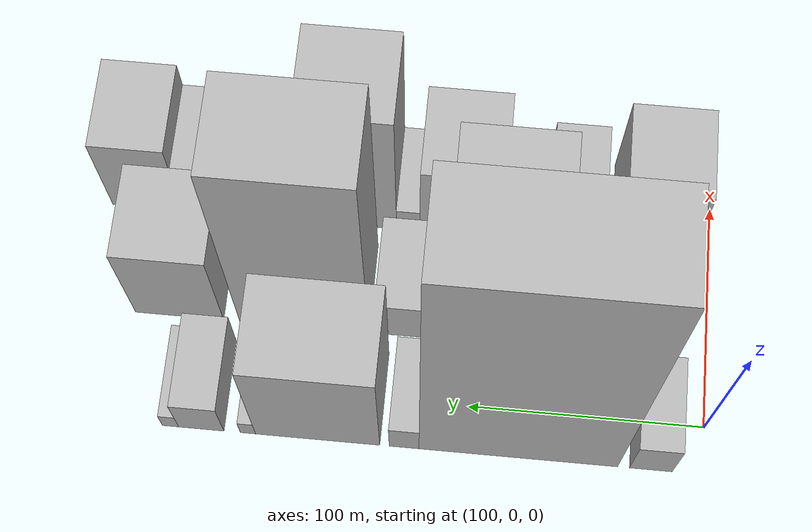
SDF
<sdf version="1.6">
 <world name="default">
  <model name="building_16">
   <static>1</static>
   <pose>100.0000 21.5906 0 0.000000 0.000000 0.000000</pose>
   <link name="link">
    <pose>0 0 16.50 0 0 0</pose>
    <collision name="collision"><geometry><box><size>40.0000 17.9257 33.0000</size></box></geometry></collision>
    <visual name="visual">
     <cast_shadows>0</cast_shadows>
     <geometry><box><size>40.0000 17.9257 33.0000</size></box></geometry>
     <material>
      <script>
       <uri>model://HANNAS_wall/materials/scripts</uri>
       <uri>model://HANNAS_wall/materials/textures</uri>
       <name>vrc/HANNAS_wall</name>
      </script>
     </material>
    </visual>
   </link>
  </model>
  <model name="building_17">
   <static>1</static>
   <pose>100.0000 77.3882 0 0.000000 0.000000 0.000000</pose>
   <link name="link">
    <pose>0 0 105.00 0 0 0</pose>
    <collision name="collision"><geometry><box><size>40.0000 83.6695 210.0000</size></box></geometry></collision>
    <visual name="visual">
     <cast_shadows>0</cast_shadows>
     <geometry><box><size>40.0000 83.6695 210.0000</size></box></geometry>
     <material>
      <script>
       <uri>model://HANNAS_wall/materials/scripts</uri>
       <uri>model://HANNAS_wall/materials/textures</uri>
       <name>vrc/HANNAS_wall</name>
      </script>
     </material>
    </visual>
   </link>
  </model>
  <model name="building_18">
   <static>1</static>
   <pose>100.0000 125.5073 0 0.000000 0.000000 0.000000</pose>
   <link name="link">
    <pose>0 0 13.50 0 0 0</pose>
    <collision name="collision"><geometry><box><size>40.0000 12.5687 27.0000</size></box></geometry></collision>
    <visual name="visual">
     <cast_shadows>0</cast_shadows>
     <geometry><box><size>40.0000 12.5687 27.0000</size></box></geometry>
     <material>
      <script>
       <uri>model://HANNAS_wall/materials/scripts</uri>
       <uri>model://HANNAS_wall/materials/textures</uri>
       <name>vrc/HANNAS_wall</name>
      </script>
     </material>
    </visual>
   </link>
  </model>
  <model name="building_19">
   <static>1</static>
   <pose>100.0000 162.1623 0 0.000000 0.000000 0.000000</pose>
   <link name="link">
    <pose>0 0 45.00 0 0 0</pose>
    <collision name="collision"><geometry><box><size>40.0000 52.7413 90.0000</size></box></geometry></collision>
    <visual name="visual">
     <cast_shadows>0</cast_shadows>
     <geometry><box><size>40.0000 52.7413 90.0000</size></box></geometry>
     <material>
      <script>
       <uri>model://HANNAS_wall/materials/scripts</uri>
       <uri>model://HANNAS_wall/materials/textures</uri>
       <name>vrc/HANNAS_wall</name>
      </script>
     </material>
    </visual>
   </link>
  </model>
  <model name="building_20">
   <static>1</static>
   <pose>100.0000 191.7754 0 0.000000 0.000000 0.000000</pose>
   <link name="link">
    <pose>0 0 7.50 0 0 0</pose>
    <collision name="collision"><geometry><box><size>40.0000 6.4849 15.0000</size></box></geometry></collision>
    <visual name="visual">
     <cast_shadows>0</cast_shadows>
     <geometry><box><size>40.0000 6.4849 15.0000</size></box></geometry>
     <material>
      <script>
       <uri>model://HANNAS_wall/materials/scripts</uri>
       <uri>model://HANNAS_wall/materials/textures</uri>
       <name>vrc/HANNAS_wall</name>
      </script>
     </material>
    </visual>
   </link>
  </model>
  <model name="building_21">
   <static>1</static>
   <pose>100.0000 211.6405 0 0.000000 0.000000 0.000000</pose>
   <link name="link">
    <pose>0 0 16.50 0 0 0</pose>
    <collision name="collision"><geometry><box><size>40.0000 19.2453 33.0000</size></box></geometry></collision>
    <visual name="visual">
     <cast_shadows>0</cast_shadows>
     <geometry><box><size>40.0000 19.2453 33.0000</size></box></geometry>
     <material>
      <script>
       <uri>model://HANNAS_wall/materials/scripts</uri>
       <uri>model://HANNAS_wall/materials/textures</uri>
       <name>vrc/HANNAS_wall</name>
      </script>
     </material>
    </visual>
   </link>
  </model>
  <model name="building_22">
   <static>1</static>
   <pose>100.0000 224.7360 0 0.000000 0.000000 0.000000</pose>
   <link name="link">
    <pose>0 0 7.50 0 0 0</pose>
    <collision name="collision"><geometry><box><size>40.0000 6.9459 15.0000</size></box></geometry></collision>
    <visual name="visual">
     <cast_shadows>0</cast_shadows>
     <geometry><box><size>40.0000 6.9459 15.0000</size></box></geometry>
     <material>
      <script>
       <uri>model://HANNAS_wall/materials/scripts</uri>
       <uri>model://HANNAS_wall/materials/textures</uri>
       <name>vrc/HANNAS_wall</name>
      </script>
     </material>
    </visual>
   </link>
  </model>
  <model name="building_45">
   <static>1</static>
   <pose>149.0000 17.3523 0 0.000000 0.000000 0.000000</pose>
   <link name="link">
    <pose>0 0 10.50 0 0 0</pose>
    <collision name="collision"><geometry><box><size>40.0000 9.7589 21.0000</size></box></geometry></collision>
    <visual name="visual">
     <cast_shadows>0</cast_shadows>
     <geometry><box><size>40.0000 9.7589 21.0000</size></box></geometry>
     <material>
      <script>
       <uri>model://HANNAS_wall/materials/scripts</uri>
       <uri>model://HANNAS_wall/materials/textures</uri>
       <name>vrc/HANNAS_wall</name>
      </script>
     </material>
    </visual>
   </link>
  </model>
  <model name="building_46">
   <static>1</static>
   <pose>149.0000 47.5939 0 0.000000 0.000000 0.000000</pose>
   <link name="link">
    <pose>0 0 46.50 0 0 0</pose>
    <collision name="collision"><geometry><box><size>40.0000 36.7242 93.0000</size></box></geometry></collision>
    <visual name="visual">
     <cast_shadows>0</cast_shadows>
     <geometry><box><size>40.0000 36.7242 93.0000</size></box></geometry>
     <material>
      <script>
       <uri>model://HANNAS_wall/materials/scripts</uri>
       <uri>model://HANNAS_wall/materials/textures</uri>
       <name>vrc/HANNAS_wall</name>
      </script>
     </material>
    </visual>
   </link>
  </model>
  <model name="building_47">
   <static>1</static>
   <pose>149.0000 90.8027 0 0.000000 0.000000 0.000000</pose>
   <link name="link">
    <pose>0 0 67.50 0 0 0</pose>
    <collision name="collision"><geometry><box><size>40.0000 43.6934 135.0000</size></box></geometry></collision>
    <visual name="visual">
     <cast_shadows>0</cast_shadows>
     <geometry><box><size>40.0000 43.6934 135.0000</size></box></geometry>
     <material>
      <script>
       <uri>model://HANNAS_wall/materials/scripts</uri>
       <uri>model://HANNAS_wall/materials/textures</uri>
       <name>vrc/HANNAS_wall</name>
      </script>
     </material>
    </visual>
   </link>
  </model>
  <model name="building_48">
   <static>1</static>
   <pose>149.0000 132.5423 0 0.000000 0.000000 0.000000</pose>
   <link name="link">
    <pose>0 0 18.00 0 0 0</pose>
    <collision name="collision"><geometry><box><size>40.0000 19.7859 36.0000</size></box></geometry></collision>
    <visual name="visual">
     <cast_shadows>0</cast_shadows>
     <geometry><box><size>40.0000 19.7859 36.0000</size></box></geometry>
     <material>
      <script>
       <uri>model://HANNAS_wall/materials/scripts</uri>
       <uri>model://HANNAS_wall/materials/textures</uri>
       <name>vrc/HANNAS_wall</name>
      </script>
     </material>
    </visual>
   </link>
  </model>
  <model name="building_49">
   <static>1</static>
   <pose>149.0000 173.6036 0 0.000000 0.000000 0.000000</pose>
   <link name="link">
    <pose>0 0 79.50 0 0 0</pose>
    <collision name="collision"><geometry><box><size>40.0000 56.3367 159.0000</size></box></geometry></collision>
    <visual name="visual">
     <cast_shadows>0</cast_shadows>
     <geometry><box><size>40.0000 56.3367 159.0000</size></box></geometry>
     <material>
      <script>
       <uri>model://HANNAS_wall/materials/scripts</uri>
       <uri>model://HANNAS_wall/materials/textures</uri>
       <name>vrc/HANNAS_wall</name>
      </script>
     </material>
    </visual>
   </link>
  </model>
  <model name="building_50">
   <static>1</static>
   <pose>149.0000 228.0568 0 0.000000 0.000000 0.000000</pose>
   <link name="link">
    <pose>0 0 34.50 0 0 0</pose>
    <collision name="collision"><geometry><box><size>40.0000 38.5696 69.0000</size></box></geometry></collision>
    <visual name="visual">
     <cast_shadows>0</cast_shadows>
     <geometry><box><size>40.0000 38.5696 69.0000</size></box></geometry>
     <material>
      <script>
       <uri>model://HANNAS_wall/materials/scripts</uri>
       <uri>model://HANNAS_wall/materials/textures</uri>
       <name>vrc/HANNAS_wall</name>
      </script>
     </material>
    </visual>
   </link>
  </model>
  <model name="building_75">
   <static>1</static>
   <pose>198.0000 25.5639 0 0.000000 0.000000 0.000000</pose>
   <link name="link">
    <pose>0 0 31.50 0 0 0</pose>
    <collision name="collision"><geometry><box><size>40.0000 35.0696 63.0000</size></box></geometry></collision>
    <visual name="visual">
     <cast_shadows>0</cast_shadows>
     <geometry><box><size>40.0000 35.0696 63.0000</size></box></geometry>
     <material>
      <script>
       <uri>model://HANNAS_wall/materials/scripts</uri>
       <uri>model://HANNAS_wall/materials/textures</uri>
       <name>vrc/HANNAS_wall</name>
      </script>
     </material>
    </visual>
   </link>
  </model>
  <model name="building_76">
   <static>1</static>
   <pose>198.0000 60.7729 0 0.000000 0.000000 0.000000</pose>
   <link name="link">
    <pose>0 0 19.50 0 0 0</pose>
    <collision name="collision"><geometry><box><size>40.0000 23.3485 39.0000</size></box></geometry></collision>
    <visual name="visual">
     <cast_shadows>0</cast_shadows>
     <geometry><box><size>40.0000 23.3485 39.0000</size></box></geometry>
     <material>
      <script>
       <uri>model://HANNAS_wall/materials/scripts</uri>
       <uri>model://HANNAS_wall/materials/textures</uri>
       <name>vrc/HANNAS_wall</name>
      </script>
     </material>
    </visual>
   </link>
  </model>
  <model name="building_77">
   <static>1</static>
   <pose>198.0000 76.2801 0 0.000000 0.000000 0.000000</pose>
   <link name="link">
    <pose>0 0 9.00 0 0 0</pose>
    <collision name="collision"><geometry><box><size>40.0000 7.6658 18.0000</size></box></geometry></collision>
    <visual name="visual">
     <cast_shadows>0</cast_shadows>
     <geometry><box><size>40.0000 7.6658 18.0000</size></box></geometry>
     <material>
      <script>
       <uri>model://HANNAS_wall/materials/scripts</uri>
       <uri>model://HANNAS_wall/materials/textures</uri>
       <name>vrc/HANNAS_wall</name>
      </script>
     </material>
    </visual>
   </link>
  </model>
  <model name="building_78">
   <static>1</static>
   <pose>198.0000 86.0988 0 0.000000 0.000000 0.000000</pose>
   <link name="link">
    <pose>0 0 13.50 0 0 0</pose>
    <collision name="collision"><geometry><box><size>40.0000 11.9716 27.0000</size></box></geometry></collision>
    <visual name="visual">
     <cast_shadows>0</cast_shadows>
     <geometry><box><size>40.0000 11.9716 27.0000</size></box></geometry>
     <material>
      <script>
       <uri>model://HANNAS_wall/materials/scripts</uri>
       <uri>model://HANNAS_wall/materials/textures</uri>
       <name>vrc/HANNAS_wall</name>
      </script>
     </material>
    </visual>
   </link>
  </model>
  <model name="building_79">
   <static>1</static>
   <pose>198.0000 109.9560 0 0.000000 0.000000 0.000000</pose>
   <link name="link">
    <pose>0 0 31.50 0 0 0</pose>
    <collision name="collision"><geometry><box><size>40.0000 35.7428 63.0000</size></box></geometry></collision>
    <visual name="visual">
     <cast_shadows>0</cast_shadows>
     <geometry><box><size>40.0000 35.7428 63.0000</size></box></geometry>
     <material>
      <script>
       <uri>model://HANNAS_wall/materials/scripts</uri>
       <uri>model://HANNAS_wall/materials/textures</uri>
       <name>vrc/HANNAS_wall</name>
      </script>
     </material>
    </visual>
   </link>
  </model>
  <model name="building_80">
   <static>1</static>
   <pose>198.0000 132.9743 0 0.000000 0.000000 0.000000</pose>
   <link name="link">
    <pose>0 0 10.50 0 0 0</pose>
    <collision name="collision"><geometry><box><size>40.0000 10.2938 21.0000</size></box></geometry></collision>
    <visual name="visual">
     <cast_shadows>0</cast_shadows>
     <geometry><box><size>40.0000 10.2938 21.0000</size></box></geometry>
     <material>
      <script>
       <uri>model://HANNAS_wall/materials/scripts</uri>
       <uri>model://HANNAS_wall/materials/textures</uri>
       <name>vrc/HANNAS_wall</name>
      </script>
     </material>
    </visual>
   </link>
  </model>
  <model name="building_81">
   <static>1</static>
   <pose>198.0000 158.1786 0 0.000000 0.000000 0.000000</pose>
   <link name="link">
    <pose>0 0 54.00 0 0 0</pose>
    <collision name="collision"><geometry><box><size>40.0000 40.1147 108.0000</size></box></geometry></collision>
    <visual name="visual">
     <cast_shadows>0</cast_shadows>
     <geometry><box><size>40.0000 40.1147 108.0000</size></box></geometry>
     <material>
      <script>
       <uri>model://HANNAS_wall/materials/scripts</uri>
       <uri>model://HANNAS_wall/materials/textures</uri>
       <name>vrc/HANNAS_wall</name>
      </script>
     </material>
    </visual>
   </link>
  </model>
  <model name="building_82">
   <static>1</static>
   <pose>198.0000 194.0874 0 0.000000 0.000000 0.000000</pose>
   <link name="link">
    <pose>0 0 28.50 0 0 0</pose>
    <collision name="collision"><geometry><box><size>40.0000 31.7029 57.0000</size></box></geometry></collision>
    <visual name="visual">
     <cast_shadows>0</cast_shadows>
     <geometry><box><size>40.0000 31.7029 57.0000</size></box></geometry>
     <material>
      <script>
       <uri>model://HANNAS_wall/materials/scripts</uri>
       <uri>model://HANNAS_wall/materials/textures</uri>
       <name>vrc/HANNAS_wall</name>
      </script>
     </material>
    </visual>
   </link>
  </model>
  <model name="building_83">
   <static>1</static>
   <pose>198.0000 221.6869 0 0.000000 0.000000 0.000000</pose>
   <link name="link">
    <pose>0 0 22.50 0 0 0</pose>
    <collision name="collision"><geometry><box><size>40.0000 23.4960 45.0000</size></box></geometry></collision>
    <visual name="visual">
     <cast_shadows>0</cast_shadows>
     <geometry><box><size>40.0000 23.4960 45.0000</size></box></geometry>
     <material>
      <script>
       <uri>model://HANNAS_wall/materials/scripts</uri>
       <uri>model://HANNAS_wall/materials/textures</uri>
       <name>vrc/HANNAS_wall</name>
      </script>
     </material>
    </visual>
   </link>
  </model>
  <model name="building_84">
   <static>1</static>
   <pose>198.0000 249.2877 0 0.000000 0.000000 0.000000</pose>
   <link name="link">
    <pose>0 0 31.50 0 0 0</pose>
    <collision name="collision"><geometry><box><size>40.0000 31.7057 63.0000</size></box></geometry></collision>
    <visual name="visual">
     <cast_shadows>0</cast_shadows>
     <geometry><box><size>40.0000 31.7057 63.0000</size></box></geometry>
     <material>
      <script>
       <uri>model://HANNAS_wall/materials/scripts</uri>
       <uri>model://HANNAS_wall/materials/textures</uri>
       <name>vrc/HANNAS_wall</name>
      </script>
     </material>
    </visual>
   </link>
  </model>
 </world>
</sdf>
